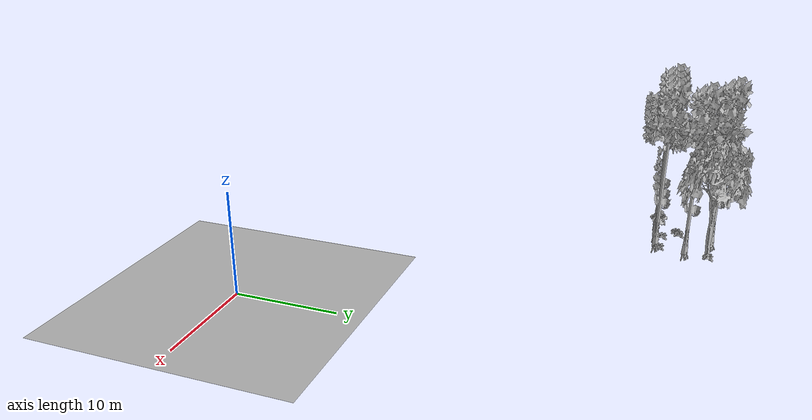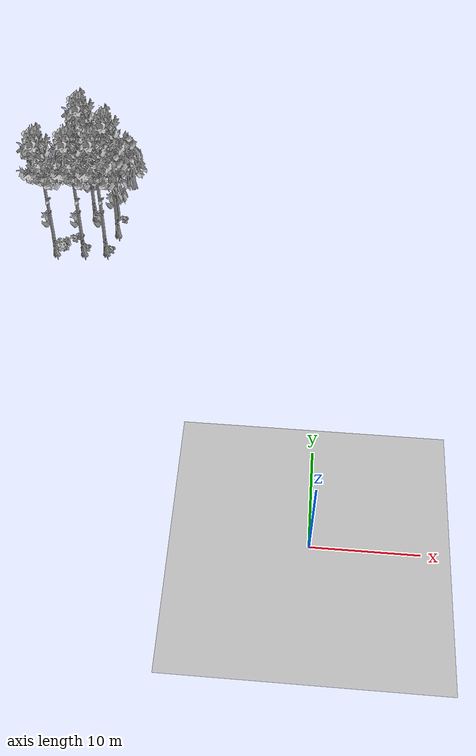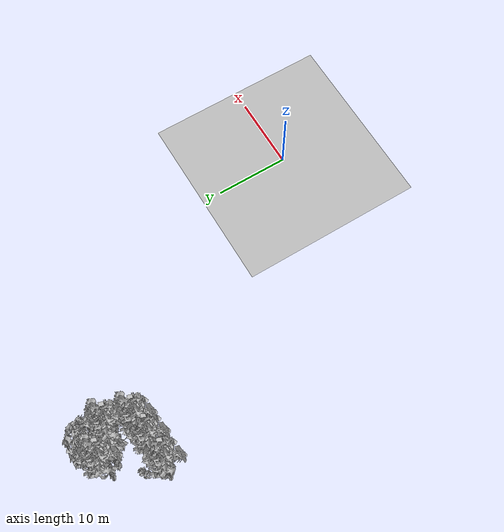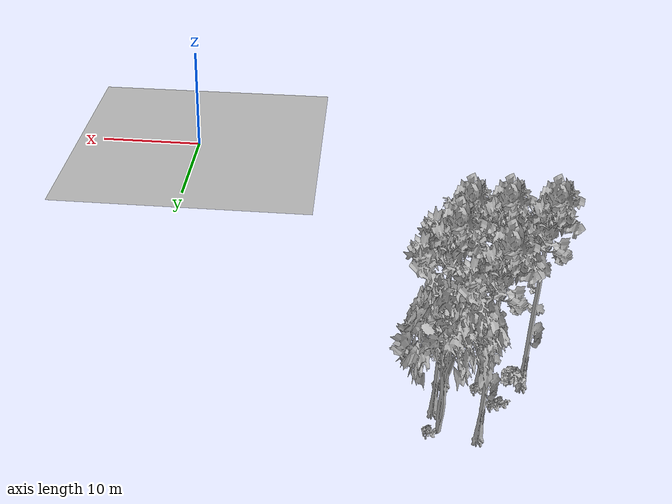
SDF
<sdf version="1.7">
 <world name="default">
  <model name="ground_plane">
   <static>1</static>
   <link name="link">
    <collision name="collision">
     <pose>-50 0 0 0 -0 0</pose>
     <geometry><plane><normal>0 0 1</normal><size>80 80</size></plane></geometry>
     <surface><contact><ode><min_depth>0.01</min_depth><max_vel>0</max_vel></ode></contact></surface>
    </collision>
    <visual name="grass">
     <cast_shadows>0</cast_shadows>
     <geometry>
      <mesh>
       <scale>0.46714285714285714 0.46714285714285714 0.1</scale>
       <uri>file://grass_plane/meshes/grass_plane.dae</uri>
      </mesh>
     </geometry>
    </visual>
   </link>
  </model>
  <model name="Tree 26">
   <static>1</static>
   <pose>-23.19923432240673 39.65129565254853 0 1.57079 -0 0</pose>
   <link name="link">
    <collision name="collision">
     <geometry><mesh><scale>3.5 5 3.5</scale><uri>model://tree_2/meshes/tree_2.obj</uri></mesh></geometry>
    </collision>
    <visual name="visual">
     <geometry><mesh><scale>3.5 5 3.5</scale><uri>model://tree_2/meshes/tree_2.obj</uri></mesh></geometry>
    </visual>
   </link>
  </model>
  <model name="Tree 28">
   <static>1</static>
   <pose>-25.822680429466185 39.910124445336265 0 1.57079 -0 0</pose>
   <link name="link">
    <collision name="collision">
     <geometry><mesh><scale>3.5 5 3.5</scale><uri>model://tree_9/meshes/tree_9.obj</uri></mesh></geometry>
    </collision>
    <visual name="visual">
     <geometry><mesh><scale>3.5 5 3.5</scale><uri>model://tree_9/meshes/tree_9.obj</uri></mesh></geometry>
    </visual>
   </link>
  </model>
  <model name="Tree 49">
   <static>1</static>
   <pose>-22.85408886522802 37.53231106756131 0 1.57079 -0 0</pose>
   <link name="link">
    <collision name="collision">
     <geometry><mesh><scale>3.5 5 3.5</scale><uri>model://tree_9/meshes/tree_9.obj</uri></mesh></geometry>
    </collision>
    <visual name="visual">
     <geometry><mesh><scale>3.5 5 3.5</scale><uri>model://tree_9/meshes/tree_9.obj</uri></mesh></geometry>
    </visual>
   </link>
  </model>
  <model name="Tree 268">
   <static>1</static>
   <pose>-26.231979658911847 34.35220936292377 0 1.57079 -0 0</pose>
   <link name="link">
    <collision name="collision">
     <geometry><mesh><scale>3.5 5 3.5</scale><uri>model://tree_9/meshes/tree_9.obj</uri></mesh></geometry>
    </collision>
    <visual name="visual">
     <geometry><mesh><scale>3.5 5 3.5</scale><uri>model://tree_9/meshes/tree_9.obj</uri></mesh></geometry>
    </visual>
   </link>
  </model>
  <model name="Tree 371">
   <static>1</static>
   <pose>-23.746967448655575 34.576888582199345 0 1.57079 -0 0</pose>
   <link name="link">
    <collision name="collision">
     <geometry><mesh><scale>3.5 5 3.5</scale><uri>model://tree_9/meshes/tree_9.obj</uri></mesh></geometry>
    </collision>
    <visual name="visual">
     <geometry><mesh><scale>3.5 5 3.5</scale><uri>model://tree_9/meshes/tree_9.obj</uri></mesh></geometry>
    </visual>
   </link>
  </model>
  <model name="Tree 477">
   <static>1</static>
   <pose>-29.309656735768364 34.116852062812725 0 1.57079 -0 0</pose>
   <link name="link">
    <collision name="collision">
     <geometry><mesh><scale>3.5 5 3.5</scale><uri>model://tree_9/meshes/tree_9.obj</uri></mesh></geometry>
    </collision>
    <visual name="visual">
     <geometry><mesh><scale>3.5 5 3.5</scale><uri>model://tree_9/meshes/tree_9.obj</uri></mesh></geometry>
    </visual>
   </link>
  </model>
  <model name="Bush 67">
   <static>1</static>
   <pose>-23.369315416836635 34.97867583403466 0 1.57079 -0 0</pose>
   <link name="link">
    <collision name="collision">
     <geometry><mesh><scale>2 2 2</scale><uri>model://bush_2/meshes/bush_2.obj</uri></mesh></geometry>
     <surface><contact><collide_without_contact>false</collide_without_contact></contact></surface>
    </collision>
    <visual name="visual">
     <geometry><mesh><scale>2 2 2</scale><uri>model://bush_2/meshes/bush_2.obj</uri></mesh></geometry>
    </visual>
   </link>
  </model>
  <model name="Bush 105">
   <static>1</static>
   <pose>-28.481421675198163 34.30256186100149 0 1.57079 -0 0</pose>
   <link name="link">
    <collision name="collision">
     <geometry><mesh><scale>2 2 2</scale><uri>model://bush_1/meshes/bush_1.obj</uri></mesh></geometry>
     <surface><contact><collide_without_contact>false</collide_without_contact></contact></surface>
    </collision>
    <visual name="visual">
     <geometry><mesh><scale>2 2 2</scale><uri>model://bush_1/meshes/bush_1.obj</uri></mesh></geometry>
    </visual>
   </link>
  </model>
  <model name="Bush 262">
   <static>1</static>
   <pose>-27.110846586939005 36.65355176990205 0 1.57079 -0 0</pose>
   <link name="link">
    <collision name="collision">
     <geometry><mesh><scale>2 2 2</scale><uri>model://bush_2/meshes/bush_2.obj</uri></mesh></geometry>
     <surface><contact><collide_without_contact>false</collide_without_contact></contact></surface>
    </collision>
    <visual name="visual">
     <geometry><mesh><scale>2 2 2</scale><uri>model://bush_2/meshes/bush_2.obj</uri></mesh></geometry>
    </visual>
   </link>
  </model>
  <model name="Bush 370">
   <static>1</static>
   <pose>-22.545191607363545 39.771403917743655 0 1.57079 -0 0</pose>
   <link name="link">
    <collision name="collision">
     <geometry><mesh><scale>2 2 2</scale><uri>model://bush_2/meshes/bush_2.obj</uri></mesh></geometry>
     <surface><contact><collide_without_contact>false</collide_without_contact></contact></surface>
    </collision>
    <visual name="visual">
     <geometry><mesh><scale>2 2 2</scale><uri>model://bush_2/meshes/bush_2.obj</uri></mesh></geometry>
    </visual>
   </link>
  </model>
  <model name="Bush 420">
   <static>1</static>
   <pose>-26.09064054290892 35.03202589360406 0 1.57079 -0 0</pose>
   <link name="link">
    <collision name="collision">
     <geometry><mesh><scale>2 2 2</scale><uri>model://bush_2/meshes/bush_2.obj</uri></mesh></geometry>
     <surface><contact><collide_without_contact>false</collide_without_contact></contact></surface>
    </collision>
    <visual name="visual">
     <geometry><mesh><scale>2 2 2</scale><uri>model://bush_2/meshes/bush_2.obj</uri></mesh></geometry>
    </visual>
   </link>
  </model>
  <model name="Bush 485">
   <static>1</static>
   <pose>-27.668563092476873 36.33027016891444 0 1.57079 -0 0</pose>
   <link name="link">
    <collision name="collision">
     <geometry><mesh><scale>2 2 2</scale><uri>model://bush_2/meshes/bush_2.obj</uri></mesh></geometry>
     <surface><contact><collide_without_contact>false</collide_without_contact></contact></surface>
    </collision>
    <visual name="visual">
     <geometry><mesh><scale>2 2 2</scale><uri>model://bush_2/meshes/bush_2.obj</uri></mesh></geometry>
    </visual>
   </link>
  </model>
 </world>
</sdf>
